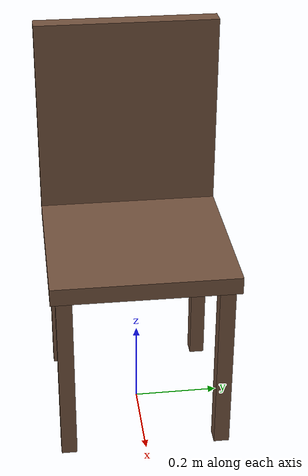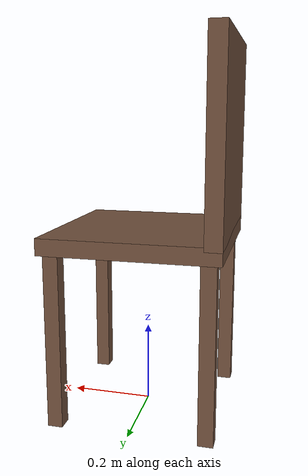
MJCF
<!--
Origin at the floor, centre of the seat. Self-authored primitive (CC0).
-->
<mujoco model="chair">
  <asset>
    <material name="mat" rgba="0.45 0.32 0.24 1"/>
  </asset>
  <worldbody>
    <body name="chair">
      <geom name="seat" type="box" size="0.21 0.21 0.02" pos="0 0 0.44" material="mat" friction="0.8 0.01 0.0002" condim="4"/>
      <geom name="back" type="box" size="0.02 0.21 0.23" pos="-0.19 0 0.68" material="mat" condim="4"/>
      <geom name="leg0" type="box" size="0.018 0.018 0.22" pos="0.18 0.18 0.22" material="mat" condim="4"/>
      <geom name="leg1" type="box" size="0.018 0.018 0.22" pos="0.18 -0.18 0.22" material="mat" condim="4"/>
      <geom name="leg2" type="box" size="0.018 0.018 0.22" pos="-0.18 0.18 0.22" material="mat" condim="4"/>
      <geom name="leg3" type="box" size="0.018 0.018 0.22" pos="-0.18 -0.18 0.22" material="mat" condim="4"/>
    </body>
  </worldbody>
</mujoco>
